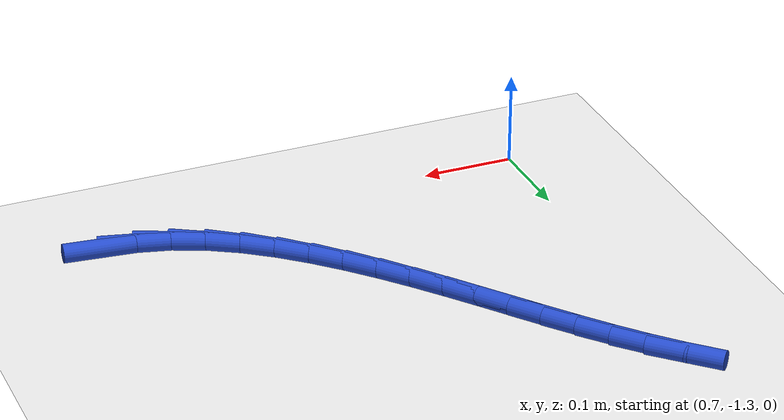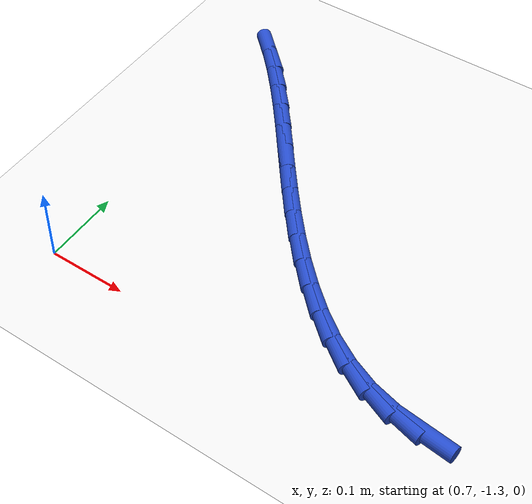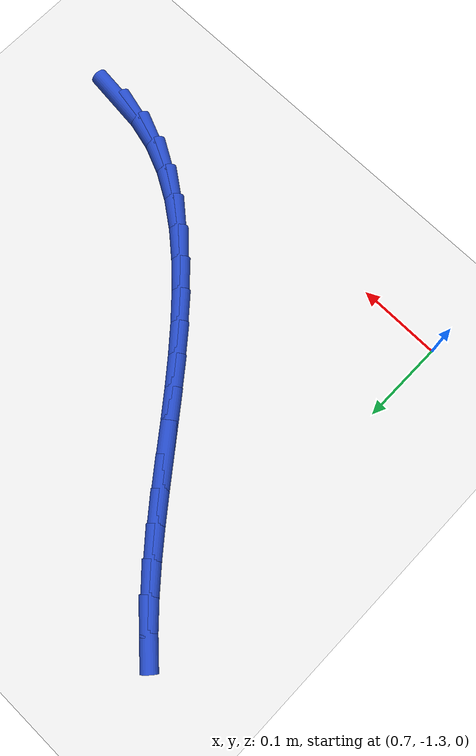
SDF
<sdf version="1.6">
 <world name="default">
  <model name="ground_plane">
   <static>1</static>
   <link name="link">
    <collision name="collision">
     <geometry><plane><normal>0 0 1</normal><size>100 100</size></plane></geometry>
     <surface><friction><ode><mu>100</mu><mu2>50</mu2></ode></friction></surface>
    </collision>
    <visual name="visual">
     <cast_shadows>0</cast_shadows>
     <geometry><plane><normal>0 0 1</normal><size>100 100</size></plane></geometry>
     <material>
      <script><uri>file://media/materials/scripts/gazebo.material</uri><name>Gazebo/WhiteGlow</name></script>
     </material>
    </visual>
   </link>
  </model>
  <model name="line">
   <link name="link_160">
    <pose>1.173981153125929 -1.2715491832452583 0.01 0 1.57 -0.10883879650555325</pose>
    <collision name="collision">
     <geometry><cylinder><radius>0.01</radius><length>0.08</length></cylinder></geometry>
    </collision>
    <visual name="visual">
     <material>
      <script><name>Gazebo/Blue</name><uri>file://media/materials/scripts/gazebo.material</uri></script>
     </material>
     <geometry><cylinder><radius>0.01</radius><length>0.08</length></cylinder></geometry>
    </visual>
   </link>
   <link name="link_161">
    <pose>1.1377245274436283 -1.2675873997638432 0.01 0 1.57 -0.25404282221734525</pose>
    <collision name="collision">
     <geometry><cylinder><radius>0.01</radius><length>0.08</length></cylinder></geometry>
    </collision>
    <visual name="visual">
     <material>
      <script><name>Gazebo/Blue</name><uri>file://media/materials/scripts/gazebo.material</uri></script>
     </material>
     <geometry><cylinder><radius>0.01</radius><length>0.08</length></cylinder></geometry>
    </visual>
   </link>
   <link name="link_162">
    <pose>1.102732141128374 -1.2585015284322458 0.01 0 1.57 -0.40379241513961023</pose>
    <collision name="collision">
     <geometry><cylinder><radius>0.01</radius><length>0.08</length></cylinder></geometry>
    </collision>
    <visual name="visual">
     <material>
      <script><name>Gazebo/Blue</name><uri>file://media/materials/scripts/gazebo.material</uri></script>
     </material>
     <geometry><cylinder><radius>0.01</radius><length>0.08</length></cylinder></geometry>
    </visual>
   </link>
   <link name="link_163">
    <pose>1.0693422247104056 -1.2442349939882644 0.01 0 1.57 -0.5326043770312809</pose>
    <collision name="collision">
     <geometry><cylinder><radius>0.01</radius><length>0.08</length></cylinder></geometry>
    </collision>
    <visual name="visual">
     <material>
      <script><name>Gazebo/Blue</name><uri>file://media/materials/scripts/gazebo.material</uri></script>
     </material>
     <geometry><cylinder><radius>0.01</radius><length>0.08</length></cylinder></geometry>
    </visual>
   </link>
   <link name="link_164">
    <pose>1.0375845422997767 -1.2255163546675674 0.01 0 1.57 -0.6355858474910936</pose>
    <collision name="collision">
     <geometry><cylinder><radius>0.01</radius><length>0.08</length></cylinder></geometry>
    </collision>
    <visual name="visual">
     <material>
      <script><name>Gazebo/Blue</name><uri>file://media/materials/scripts/gazebo.material</uri></script>
     </material>
     <geometry><cylinder><radius>0.01</radius><length>0.08</length></cylinder></geometry>
    </visual>
   </link>
   <link name="link_165">
    <pose>1.0074156182326948 -1.2032605844582749 0.01 0 1.57 -0.7155009184519023</pose>
    <collision name="collision">
     <geometry><cylinder><radius>0.01</radius><length>0.08</length></cylinder></geometry>
    </collision>
    <visual name="visual">
     <material>
      <script><name>Gazebo/Blue</name><uri>file://media/materials/scripts/gazebo.material</uri></script>
     </material>
     <geometry><cylinder><radius>0.01</radius><length>0.08</length></cylinder></geometry>
    </visual>
   </link>
   <link name="link_166">
    <pose>0.9787919768453642 -1.178382657348506 0.01 0 1.57 -0.7756240512398235</pose>
    <collision name="collision">
     <geometry><cylinder><radius>0.01</radius><length>0.08</length></cylinder></geometry>
    </collision>
    <visual name="visual">
     <material>
      <script><name>Gazebo/Blue</name><uri>file://media/materials/scripts/gazebo.material</uri></script>
     </material>
     <geometry><cylinder><radius>0.01</radius><length>0.08</length></cylinder></geometry>
    </visual>
   </link>
   <link name="link_167">
    <pose>0.9516648068215564 -1.1517806589667245 0.01 0 1.57 -0.8222489477275151</pose>
    <collision name="collision">
     <geometry><cylinder><radius>0.01</radius><length>0.08</length></cylinder></geometry>
    </collision>
    <visual name="visual">
     <material>
      <script><name>Gazebo/Blue</name><uri>file://media/materials/scripts/gazebo.material</uri></script>
     </material>
     <geometry><cylinder><radius>0.01</radius><length>0.08</length></cylinder></geometry>
    </visual>
   </link>
   <link name="link_168">
    <pose>0.9258811698373564 -1.124023093062336 0.01 0 1.57 -0.859452362382239</pose>
    <collision name="collision">
     <geometry><cylinder><radius>0.01</radius><length>0.08</length></cylinder></geometry>
    </collision>
    <visual name="visual">
     <material>
      <script><name>Gazebo/Blue</name><uri>file://media/materials/scripts/gazebo.material</uri></script>
     </material>
     <geometry><cylinder><radius>0.01</radius><length>0.08</length></cylinder></geometry>
    </visual>
   </link>
   <link name="link_169">
    <pose>0.9011933889842182 -1.095378597658873 0.01 0 1.57 -0.8872841887047884</pose>
    <collision name="collision">
     <geometry><cylinder><radius>0.01</radius><length>0.08</length></cylinder></geometry>
    </collision>
    <visual name="visual">
     <material>
      <script><name>Gazebo/Blue</name><uri>file://media/materials/scripts/gazebo.material</uri></script>
     </material>
     <geometry><cylinder><radius>0.01</radius><length>0.08</length></cylinder></geometry>
    </visual>
   </link>
   <link name="link_170">
    <pose>0.8773503346427138 -1.066104882290082 0.01 0 1.57 -0.9057291465459175</pose>
    <collision name="collision">
     <geometry><cylinder><radius>0.01</radius><length>0.08</length></cylinder></geometry>
    </collision>
    <visual name="visual">
     <material>
      <script><name>Gazebo/Blue</name><uri>file://media/materials/scripts/gazebo.material</uri></script>
     </material>
     <geometry><cylinder><radius>0.01</radius><length>0.08</length></cylinder></geometry>
    </visual>
   </link>
   <link name="link_171">
    <pose>0.8541008771934177 -1.0364596564897117 0.01 0 1.57 -0.9147750094120164</pose>
    <collision name="collision">
     <geometry><cylinder><radius>0.01</radius><length>0.08</length></cylinder></geometry>
    </collision>
    <visual name="visual">
     <material>
      <script><name>Gazebo/Blue</name><uri>file://media/materials/scripts/gazebo.material</uri></script>
     </material>
     <geometry><cylinder><radius>0.01</radius><length>0.08</length></cylinder></geometry>
    </visual>
   </link>
   <link name="link_172">
    <pose>0.8311938870169021 -1.006700629791508 0.01 0 1.57 -0.9143630346659213</pose>
    <collision name="collision">
     <geometry><cylinder><radius>0.01</radius><length>0.08</length></cylinder></geometry>
    </collision>
    <visual name="visual">
     <material>
      <script><name>Gazebo/Blue</name><uri>file://media/materials/scripts/gazebo.material</uri></script>
     </material>
     <geometry><cylinder><radius>0.01</radius><length>0.08</length></cylinder></geometry>
    </visual>
   </link>
   <link name="link_173">
    <pose>0.8083782344937404 -0.9770855117292189 0.01 0 1.57 -0.9043620520504596</pose>
    <collision name="collision">
     <geometry><cylinder><radius>0.01</radius><length>0.08</length></cylinder></geometry>
    </collision>
    <visual name="visual">
     <material>
      <script><name>Gazebo/Blue</name><uri>file://media/materials/scripts/gazebo.material</uri></script>
     </material>
     <geometry><cylinder><radius>0.01</radius><length>0.08</length></cylinder></geometry>
    </visual>
   </link>
   <link name="link_174">
    <pose>0.7854027900045049 -0.9478720118365909 0.01 0 1.57 -0.8845664527308224</pose>
    <collision name="collision">
     <geometry><cylinder><radius>0.01</radius><length>0.08</length></cylinder></geometry>
    </collision>
    <visual name="visual">
     <material>
      <script><name>Gazebo/Blue</name><uri>file://media/materials/scripts/gazebo.material</uri></script>
     </material>
     <geometry><cylinder><radius>0.01</radius><length>0.08</length></cylinder></geometry>
    </visual>
   </link>
   <link name="link_175">
    <pose>0.7620164239297691 -0.9193178396473717 0.01 0 1.57 -0.8547205761726798</pose>
    <collision name="collision">
     <geometry><cylinder><radius>0.01</radius><length>0.08</length></cylinder></geometry>
    </collision>
    <visual name="visual">
     <material>
      <script><name>Gazebo/Blue</name><uri>file://media/materials/scripts/gazebo.material</uri></script>
     </material>
     <geometry><cylinder><radius>0.01</radius><length>0.08</length></cylinder></geometry>
    </visual>
   </link>
   <link name="link_176">
    <pose>0.7379680066501053 -0.8916807046953074 0.01 0 1.57 -0.8145745129472463</pose>
    <collision name="collision">
     <geometry><cylinder><radius>0.01</radius><length>0.08</length></cylinder></geometry>
    </collision>
    <visual name="visual">
     <material>
      <script><name>Gazebo/Blue</name><uri>file://media/materials/scripts/gazebo.material</uri></script>
     </material>
     <geometry><cylinder><radius>0.01</radius><length>0.08</length></cylinder></geometry>
    </visual>
   </link>
   <link name="link_177">
    <pose>0.7130064085460874 -0.8652183165141463 0.01 0 1.57 -0.7639771677861587</pose>
    <collision name="collision">
     <geometry><cylinder><radius>0.01</radius><length>0.08</length></cylinder></geometry>
    </collision>
    <visual name="visual">
     <material>
      <script><name>Gazebo/Blue</name><uri>file://media/materials/scripts/gazebo.material</uri></script>
     </material>
     <geometry><cylinder><radius>0.01</radius><length>0.08</length></cylinder></geometry>
    </visual>
   </link>
  </model>
 </world>
</sdf>
